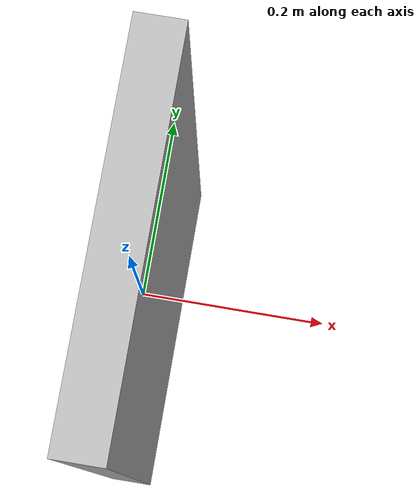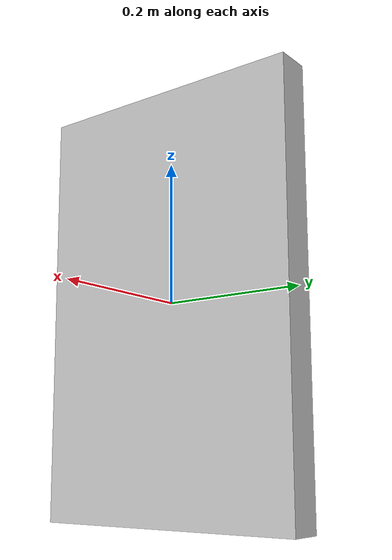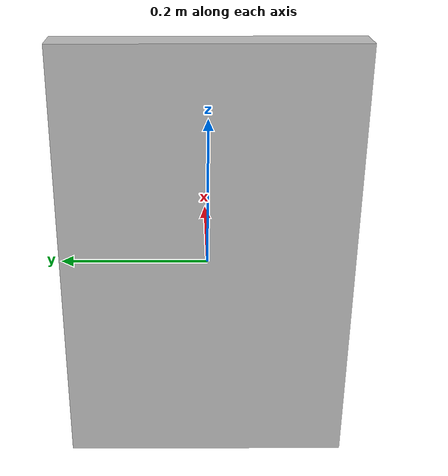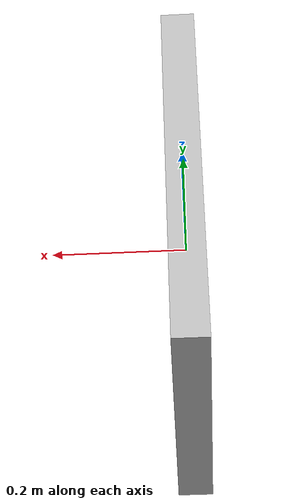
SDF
<?xml version="1.0" ?>
<sdf version="1.6">

  <model name="docking_target">

    <static>true</static>

    <link name="target_link">

      <visual name="target_visual">
        <!-- geometry -->
        <geometry>
          <box>
            <size>0.05 0.4 0.6</size>
          </box>
        </geometry>
        <!-- material -->
      </visual>

      <collision name="target_collision">
        <!-- geometry -->
        <geometry>
          <box>
            <size>0.05 0.4 0.6</size>
          </box>
        </geometry>
      </collision>

    </link>

  </model>

</sdf>
